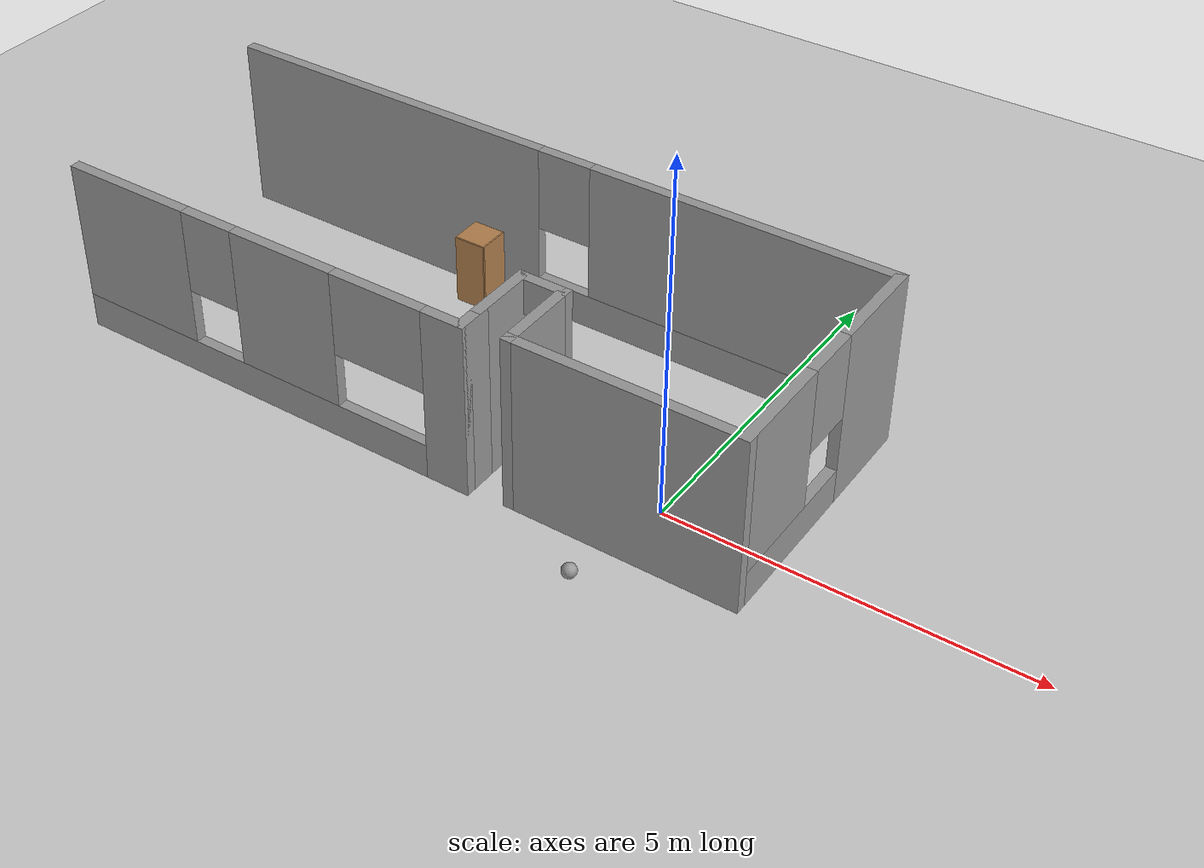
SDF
<sdf version="1.6">
 <world name="default">
  <model name="ground_plane">
   <static>1</static>
   <link name="link">
    <collision name="collision">
     <geometry><plane><normal>0 0 1</normal><size>100 100</size></plane></geometry>
     <surface><friction><ode><mu>100</mu><mu2>50</mu2></ode></friction></surface>
    </collision>
    <visual name="visual">
     <cast_shadows>0</cast_shadows>
     <geometry><plane><normal>0 0 1</normal><size>100 100</size></plane></geometry>
     <material>
      <script><uri>file://media/materials/scripts/gazebo.material</uri><name>Gazebo/Grey</name></script>
     </material>
    </visual>
   </link>
  </model>
  <model name="cabinet">
   <static>1</static>
   <link name="cabinet_bottom_plate">
    <inertial>
     <pose>0 0 -1 0 -0 0</pose>
     <inertia><ixx>2.05</ixx><ixy>0</ixy><ixz>0</ixz><iyy>2.05</iyy><iyz>0</iyz><izz>2.05</izz></inertia>
     <mass>25</mass>
    </inertial>
    <collision name="cabinet_bottom_plate_geom">
     <pose>0 0 0.01 0 -0 0</pose>
     <geometry><box><size>0.45 0.45 0.02</size></box></geometry>
    </collision>
    <visual name="cabinet_bottom_plate_geom_visual">
     <pose>0 0 0.01 0 -0 0</pose>
     <geometry><box><size>0.45 0.45 0.02</size></box></geometry>
     <material>
      <script><uri>file://media/materials/scripts/gazebo.material</uri><name>Gazebo/Wood</name></script>
     </material>
    </visual>
    <collision name="cabinet_bottom_plate_geom_cabinet_back_plate">
     <pose>0.235 0 0.51 0 -0 0</pose>
     <geometry><box><size>0.02 0.45 1.02</size></box></geometry>
    </collision>
    <visual name="cabinet_bottom_plate_geom_cabinet_back_plate_visual">
     <pose>0.235 0 0.51 0 -0 0</pose>
     <geometry><box><size>0.02 0.45 1.02</size></box></geometry>
     <material>
      <script><uri>file://media/materials/scripts/gazebo.material</uri><name>Gazebo/Wood</name></script>
     </material>
    </visual>
    <collision name="cabinet_bottom_plate_geom_cabinet_left_plate">
     <pose>0 0.235 0.51 0 -0 0</pose>
     <geometry><box><size>0.45 0.02 1.02</size></box></geometry>
    </collision>
    <visual name="cabinet_bottom_plate_geom_cabinet_left_plate_visual">
     <pose>0 0.235 0.51 0 -0 0</pose>
     <geometry><box><size>0.45 0.02 1.02</size></box></geometry>
     <material>
      <script><uri>file://media/materials/scripts/gazebo.material</uri><name>Gazebo/Wood</name></script>
     </material>
    </visual>
    <collision name="cabinet_bottom_plate_geom_cabinet_middle_plate">
     <pose>0 0 0.51 0 -0 0</pose>
     <geometry><box><size>0.45 0.45 0.02</size></box></geometry>
    </collision>
    <visual name="cabinet_bottom_plate_geom_cabinet_middle_plate_visual">
     <pose>0 0 0.51 0 -0 0</pose>
     <geometry><box><size>0.45 0.45 0.02</size></box></geometry>
     <material>
      <script><uri>file://media/materials/scripts/gazebo.material</uri><name>Gazebo/Wood</name></script>
     </material>
    </visual>
    <collision name="cabinet_bottom_plate_geom_cabinet_right_plate">
     <pose>0 -0.235 0.51 0 -0 0</pose>
     <geometry><box><size>0.45 0.02 1.02</size></box></geometry>
    </collision>
    <visual name="cabinet_bottom_plate_geom_cabinet_right_plate_visual">
     <pose>0 -0.235 0.51 0 -0 0</pose>
     <geometry><box><size>0.45 0.02 1.02</size></box></geometry>
     <material>
      <script><uri>file://media/materials/scripts/gazebo.material</uri><name>Gazebo/Wood</name></script>
     </material>
    </visual>
    <collision name="cabinet_bottom_plate_geom_cabinet_top_plate">
     <pose>0 0 1.01 0 -0 0</pose>
     <geometry><box><size>0.45 0.45 0.02</size></box></geometry>
    </collision>
    <visual name="cabinet_bottom_plate_geom_cabinet_top_plate_visual">
     <pose>0 0 1.01 0 -0 0</pose>
     <geometry><box><size>0.45 0.45 0.02</size></box></geometry>
     <material>
      <script><uri>file://media/materials/scripts/gazebo.material</uri><name>Gazebo/Wood</name></script>
     </material>
    </visual>
   </link>
   <pose>-4.44524 2.41944 0 0 -0 0</pose>
  </model>
  <model name="basicbuilding">
   <link name="Wall_17">
    <pose>0.275 1.82353 0 0 -0 0</pose>
    <visual name="Wall_17_Visual_0">
     <pose>-2.6125 0 1.25 0 -0 0</pose>
     <geometry><box><size>5.025 0.15 2.5</size></box></geometry>
     <material>
      <script><uri>file://media/materials/scripts/gazebo.material</uri><name>Gazebo/Grey</name></script>
      <ambient>1 1 1 1</ambient>
      <shader type="pixel"/>
      <diffuse>0.7 0.7 0.7 1</diffuse>
      <specular>0.01 0.01 0.01 1</specular>
      <emissive>0 0 0 1</emissive>
     </material>
     <meta><layer>0</layer></meta>
    </visual>
    <visual name="Wall_17_Visual_1">
     <pose>2.5125 0 0.25 0 -0 0</pose>
     <geometry><box><size>5.225 0.15 0.5</size></box></geometry>
     <material>
      <script><uri>file://media/materials/scripts/gazebo.material</uri><name>Gazebo/Grey</name></script>
      <ambient>1 1 1 1</ambient>
      <shader type="pixel"/>
      <diffuse>0.7 0.7 0.7 1</diffuse>
      <specular>0.01 0.01 0.01 1</specular>
      <emissive>0 0 0 1</emissive>
     </material>
     <meta><layer>0</layer></meta>
    </visual>
    <visual name="Wall_17_Visual_2">
     <pose>2.9125 0 1.5 0 -0 0</pose>
     <geometry><box><size>4.425 0.15 2</size></box></geometry>
     <material>
      <script><uri>file://media/materials/scripts/gazebo.material</uri><name>Gazebo/Grey</name></script>
      <ambient>1 1 1 1</ambient>
      <shader type="pixel"/>
      <diffuse>0.7 0.7 0.7 1</diffuse>
      <specular>0.01 0.01 0.01 1</specular>
      <emissive>0 0 0 1</emissive>
     </material>
     <meta><layer>0</layer></meta>
    </visual>
    <visual name="Wall_17_Visual_3">
     <pose>0.3 0 1.9 0 -0 0</pose>
     <geometry><box><size>0.8 0.15 1.2</size></box></geometry>
     <material>
      <script><uri>file://media/materials/scripts/gazebo.material</uri><name>Gazebo/Grey</name></script>
      <ambient>1 1 1 1</ambient>
      <shader type="pixel"/>
      <diffuse>0.7 0.7 0.7 1</diffuse>
      <specular>0.01 0.01 0.01 1</specular>
      <emissive>0 0 0 1</emissive>
     </material>
     <meta><layer>0</layer></meta>
    </visual>
    <collision name="Wall_17_Collision_0">
     <pose>-2.6125 0 1.25 0 -0 0</pose>
     <geometry><box><size>5.025 0.15 2.5</size></box></geometry>
     <surface>
      <friction>
       <ode><mu>1</mu><mu2>1</mu2><fdir1>0 0 0</fdir1><slip1>0</slip1><slip2>0</slip2></ode>
       <torsional>
        <coefficient>1</coefficient>
        <patch_radius>0</patch_radius>
        <surface_radius>0</surface_radius>
        <use_patch_radius>1</use_patch_radius>
        <ode><slip>0</slip></ode>
       </torsional>
      </friction>
      <bounce><restitution_coefficient>0</restitution_coefficient><threshold>1e+06</threshold></bounce>
      <contact>
       <collide_without_contact>0</collide_without_contact>
       <collide_without_contact_bitmask>1</collide_without_contact_bitmask>
       <collide_bitmask>1</collide_bitmask>
       <ode>
        <soft_cfm>0</soft_cfm>
        <soft_erp>0.2</soft_erp>
        <kp>1e+13</kp>
        <kd>1</kd>
        <max_vel>0.01</max_vel>
        <min_depth>0</min_depth>
       </ode>
       <bullet>
        <split_impulse>1</split_impulse>
        <split_impulse_penetration_threshold>-0.01</split_impulse_penetration_threshold>
        <soft_cfm>0</soft_cfm>
        <soft_erp>0.2</soft_erp>
        <kp>1e+13</kp>
        <kd>1</kd>
       </bullet>
      </contact>
     </surface>
    </collision>
    <collision name="Wall_17_Collision_1">
     <pose>2.5125 0 0.25 0 -0 0</pose>
     <geometry><box><size>5.225 0.15 0.5</size></box></geometry>
     <surface>
      <friction>
       <ode><mu>1</mu><mu2>1</mu2><fdir1>0 0 0</fdir1><slip1>0</slip1><slip2>0</slip2></ode>
       <torsional>
        <coefficient>1</coefficient>
        <patch_radius>0</patch_radius>
        <surface_radius>0</surface_radius>
        <use_patch_radius>1</use_patch_radius>
        <ode><slip>0</slip></ode>
       </torsional>
      </friction>
      <bounce><restitution_coefficient>0</restitution_coefficient><threshold>1e+06</threshold></bounce>
      <contact>
       <collide_without_contact>0</collide_without_contact>
       <collide_without_contact_bitmask>1</collide_without_contact_bitmask>
       <collide_bitmask>1</collide_bitmask>
       <ode>
        <soft_cfm>0</soft_cfm>
        <soft_erp>0.2</soft_erp>
        <kp>1e+13</kp>
        <kd>1</kd>
        <max_vel>0.01</max_vel>
        <min_depth>0</min_depth>
       </ode>
       <bullet>
        <split_impulse>1</split_impulse>
        <split_impulse_penetration_threshold>-0.01</split_impulse_penetration_threshold>
        <soft_cfm>0</soft_cfm>
        <soft_erp>0.2</soft_erp>
        <kp>1e+13</kp>
        <kd>1</kd>
       </bullet>
      </contact>
     </surface>
    </collision>
    <collision name="Wall_17_Collision_2">
     <pose>2.9125 0 1.5 0 -0 0</pose>
     <geometry><box><size>4.425 0.15 2</size></box></geometry>
     <surface>
      <friction>
       <ode><mu>1</mu><mu2>1</mu2><fdir1>0 0 0</fdir1><slip1>0</slip1><slip2>0</slip2></ode>
       <torsional>
        <coefficient>1</coefficient>
        <patch_radius>0</patch_radius>
        <surface_radius>0</surface_radius>
        <use_patch_radius>1</use_patch_radius>
        <ode><slip>0</slip></ode>
       </torsional>
      </friction>
      <bounce><restitution_coefficient>0</restitution_coefficient><threshold>1e+06</threshold></bounce>
      <contact>
       <collide_without_contact>0</collide_without_contact>
       <collide_without_contact_bitmask>1</collide_without_contact_bitmask>
       <collide_bitmask>1</collide_bitmask>
       <ode>
        <soft_cfm>0</soft_cfm>
        <soft_erp>0.2</soft_erp>
        <kp>1e+13</kp>
        <kd>1</kd>
        <max_vel>0.01</max_vel>
        <min_depth>0</min_depth>
       </ode>
       <bullet>
        <split_impulse>1</split_impulse>
        <split_impulse_penetration_threshold>-0.01</split_impulse_penetration_threshold>
        <soft_cfm>0</soft_cfm>
        <soft_erp>0.2</soft_erp>
        <kp>1e+13</kp>
        <kd>1</kd>
       </bullet>
      </contact>
     </surface>
    </collision>
    <collision name="Wall_17_Collision_3">
     <pose>0.3 0 1.9 0 -0 0</pose>
     <geometry><box><size>0.8 0.15 1.2</size></box></geometry>
     <surface>
      <friction>
       <ode><mu>1</mu><mu2>1</mu2><fdir1>0 0 0</fdir1><slip1>0</slip1><slip2>0</slip2></ode>
       <torsional>
        <coefficient>1</coefficient>
        <patch_radius>0</patch_radius>
        <surface_radius>0</surface_radius>
        <use_patch_radius>1</use_patch_radius>
        <ode><slip>0</slip></ode>
       </torsional>
      </friction>
      <bounce><restitution_coefficient>0</restitution_coefficient><threshold>1e+06</threshold></bounce>
      <contact>
       <collide_without_contact>0</collide_without_contact>
       <collide_without_contact_bitmask>1</collide_without_contact_bitmask>
       <collide_bitmask>1</collide_bitmask>
       <ode>
        <soft_cfm>0</soft_cfm>
        <soft_erp>0.2</soft_erp>
        <kp>1e+13</kp>
        <kd>1</kd>
        <max_vel>0.01</max_vel>
        <min_depth>0</min_depth>
       </ode>
       <bullet>
        <split_impulse>1</split_impulse>
        <split_impulse_penetration_threshold>-0.01</split_impulse_penetration_threshold>
        <soft_cfm>0</soft_cfm>
        <soft_erp>0.2</soft_erp>
        <kp>1e+13</kp>
        <kd>1</kd>
       </bullet>
      </contact>
     </surface>
    </collision>
   </link>
   <link name="Wall_18">
    <pose>5.325 0.023531 0 0 0 -1.5708</pose>
    <visual name="Wall_18_Visual_0">
     <pose>-1.1475 0 1.25 0 -0 0</pose>
     <geometry><box><size>1.455 0.15 2.5</size></box></geometry>
     <material>
      <script><uri>file://media/materials/scripts/gazebo.material</uri><name>Gazebo/Grey</name></script>
      <ambient>1 1 1 1</ambient>
      <shader type="pixel"/>
      <diffuse>0.7 0.7 0.7 1</diffuse>
      <specular>0.01 0.01 0.01 1</specular>
      <emissive>0 0 0 1</emissive>
     </material>
     <meta><layer>0</layer></meta>
    </visual>
    <visual name="Wall_18_Visual_1">
     <pose>0.7275 0 0.25 0 -0 0</pose>
     <geometry><box><size>2.295 0.15 0.5</size></box></geometry>
     <material>
      <script><uri>file://media/materials/scripts/gazebo.material</uri><name>Gazebo/Grey</name></script>
      <ambient>1 1 1 1</ambient>
      <shader type="pixel"/>
      <diffuse>0.7 0.7 0.7 1</diffuse>
      <specular>0.01 0.01 0.01 1</specular>
      <emissive>0 0 0 1</emissive>
     </material>
     <meta><layer>0</layer></meta>
    </visual>
    <visual name="Wall_18_Visual_2">
     <pose>1.1275 0 1.5 0 -0 0</pose>
     <geometry><box><size>1.495 0.15 2</size></box></geometry>
     <material>
      <script><uri>file://media/materials/scripts/gazebo.material</uri><name>Gazebo/Grey</name></script>
      <ambient>1 1 1 1</ambient>
      <shader type="pixel"/>
      <diffuse>0.7 0.7 0.7 1</diffuse>
      <specular>0.01 0.01 0.01 1</specular>
      <emissive>0 0 0 1</emissive>
     </material>
     <meta><layer>0</layer></meta>
    </visual>
    <visual name="Wall_18_Visual_3">
     <pose>-0.02 0 1.9 0 -0 0</pose>
     <geometry><box><size>0.8 0.15 1.2</size></box></geometry>
     <material>
      <script><uri>file://media/materials/scripts/gazebo.material</uri><name>Gazebo/Grey</name></script>
      <ambient>1 1 1 1</ambient>
      <shader type="pixel"/>
      <diffuse>0.7 0.7 0.7 1</diffuse>
      <specular>0.01 0.01 0.01 1</specular>
      <emissive>0 0 0 1</emissive>
     </material>
     <meta><layer>0</layer></meta>
    </visual>
    <collision name="Wall_18_Collision_0">
     <pose>-1.1475 0 1.25 0 -0 0</pose>
     <geometry><box><size>1.455 0.15 2.5</size></box></geometry>
     <surface>
      <friction>
       <ode><mu>1</mu><mu2>1</mu2><fdir1>0 0 0</fdir1><slip1>0</slip1><slip2>0</slip2></ode>
       <torsional>
        <coefficient>1</coefficient>
        <patch_radius>0</patch_radius>
        <surface_radius>0</surface_radius>
        <use_patch_radius>1</use_patch_radius>
        <ode><slip>0</slip></ode>
       </torsional>
      </friction>
      <bounce><restitution_coefficient>0</restitution_coefficient><threshold>1e+06</threshold></bounce>
      <contact>
       <collide_without_contact>0</collide_without_contact>
       <collide_without_contact_bitmask>1</collide_without_contact_bitmask>
       <collide_bitmask>1</collide_bitmask>
       <ode>
        <soft_cfm>0</soft_cfm>
        <soft_erp>0.2</soft_erp>
        <kp>1e+13</kp>
        <kd>1</kd>
        <max_vel>0.01</max_vel>
        <min_depth>0</min_depth>
       </ode>
       <bullet>
        <split_impulse>1</split_impulse>
        <split_impulse_penetration_threshold>-0.01</split_impulse_penetration_threshold>
        <soft_cfm>0</soft_cfm>
        <soft_erp>0.2</soft_erp>
        <kp>1e+13</kp>
        <kd>1</kd>
       </bullet>
      </contact>
     </surface>
    </collision>
    <collision name="Wall_18_Collision_1">
     <pose>0.7275 0 0.25 0 -0 0</pose>
     <geometry><box><size>2.295 0.15 0.5</size></box></geometry>
     <surface>
      <friction>
       <ode><mu>1</mu><mu2>1</mu2><fdir1>0 0 0</fdir1><slip1>0</slip1><slip2>0</slip2></ode>
       <torsional>
        <coefficient>1</coefficient>
        <patch_radius>0</patch_radius>
        <surface_radius>0</surface_radius>
        <use_patch_radius>1</use_patch_radius>
        <ode><slip>0</slip></ode>
       </torsional>
      </friction>
      <bounce><restitution_coefficient>0</restitution_coefficient><threshold>1e+06</threshold></bounce>
      <contact>
       <collide_without_contact>0</collide_without_contact>
       <collide_without_contact_bitmask>1</collide_without_contact_bitmask>
       <collide_bitmask>1</collide_bitmask>
       <ode>
        <soft_cfm>0</soft_cfm>
        <soft_erp>0.2</soft_erp>
        <kp>1e+13</kp>
        <kd>1</kd>
        <max_vel>0.01</max_vel>
        <min_depth>0</min_depth>
       </ode>
       <bullet>
        <split_impulse>1</split_impulse>
        <split_impulse_penetration_threshold>-0.01</split_impulse_penetration_threshold>
        <soft_cfm>0</soft_cfm>
        <soft_erp>0.2</soft_erp>
        <kp>1e+13</kp>
        <kd>1</kd>
       </bullet>
      </contact>
     </surface>
    </collision>
    <collision name="Wall_18_Collision_2">
     <pose>1.1275 0 1.5 0 -0 0</pose>
     <geometry><box><size>1.495 0.15 2</size></box></geometry>
     <surface>
      <friction>
       <ode><mu>1</mu><mu2>1</mu2><fdir1>0 0 0</fdir1><slip1>0</slip1><slip2>0</slip2></ode>
       <torsional>
        <coefficient>1</coefficient>
        <patch_radius>0</patch_radius>
        <surface_radius>0</surface_radius>
        <use_patch_radius>1</use_patch_radius>
        <ode><slip>0</slip></ode>
       </torsional>
      </friction>
      <bounce><restitution_coefficient>0</restitution_coefficient><threshold>1e+06</threshold></bounce>
      <contact>
       <collide_without_contact>0</collide_without_contact>
       <collide_without_contact_bitmask>1</collide_without_contact_bitmask>
       <collide_bitmask>1</collide_bitmask>
       <ode>
        <soft_cfm>0</soft_cfm>
        <soft_erp>0.2</soft_erp>
        <kp>1e+13</kp>
        <kd>1</kd>
        <max_vel>0.01</max_vel>
        <min_depth>0</min_depth>
       </ode>
       <bullet>
        <split_impulse>1</split_impulse>
        <split_impulse_penetration_threshold>-0.01</split_impulse_penetration_threshold>
        <soft_cfm>0</soft_cfm>
        <soft_erp>0.2</soft_erp>
        <kp>1e+13</kp>
        <kd>1</kd>
       </bullet>
      </contact>
     </surface>
    </collision>
    <collision name="Wall_18_Collision_3">
     <pose>-0.02 0 1.9 0 -0 0</pose>
     <geometry><box><size>0.8 0.15 1.2</size></box></geometry>
     <surface>
      <friction>
       <ode><mu>1</mu><mu2>1</mu2><fdir1>0 0 0</fdir1><slip1>0</slip1><slip2>0</slip2></ode>
       <torsional>
        <coefficient>1</coefficient>
        <patch_radius>0</patch_radius>
        <surface_radius>0</surface_radius>
        <use_patch_radius>1</use_patch_radius>
        <ode><slip>0</slip></ode>
       </torsional>
      </friction>
      <bounce><restitution_coefficient>0</restitution_coefficient><threshold>1e+06</threshold></bounce>
      <contact>
       <collide_without_contact>0</collide_without_contact>
       <collide_without_contact_bitmask>1</collide_without_contact_bitmask>
       <collide_bitmask>1</collide_bitmask>
       <ode>
        <soft_cfm>0</soft_cfm>
        <soft_erp>0.2</soft_erp>
        <kp>1e+13</kp>
        <kd>1</kd>
        <max_vel>0.01</max_vel>
        <min_depth>0</min_depth>
       </ode>
       <bullet>
        <split_impulse>1</split_impulse>
        <split_impulse_penetration_threshold>-0.01</split_impulse_penetration_threshold>
        <soft_cfm>0</soft_cfm>
        <soft_erp>0.2</soft_erp>
        <kp>1e+13</kp>
        <kd>1</kd>
       </bullet>
      </contact>
     </surface>
    </collision>
   </link>
   <link name="Wall_19">
    <pose>3.775 -1.77647 0 0 -0 3.14159</pose>
    <visual name="Wall_19_Visual">
     <pose>0 0 1.25 0 -0 0</pose>
     <geometry><box><size>3.25 0.15 2.5</size></box></geometry>
     <material>
      <script><uri>file://media/materials/scripts/gazebo.material</uri><name>Gazebo/Grey</name></script>
      <ambient>1 1 1 1</ambient>
      <shader type="pixel"/>
      <diffuse>0.7 0.7 0.7 1</diffuse>
      <specular>0.01 0.01 0.01 1</specular>
      <emissive>0 0 0 1</emissive>
     </material>
     <meta><layer>0</layer></meta>
    </visual>
    <collision name="Wall_19_Collision">
     <pose>0 0 1.25 0 -0 0</pose>
     <geometry><box><size>3.25 0.15 2.5</size></box></geometry>
     <surface>
      <friction>
       <ode><mu>1</mu><mu2>1</mu2><fdir1>0 0 0</fdir1><slip1>0</slip1><slip2>0</slip2></ode>
       <torsional>
        <coefficient>1</coefficient>
        <patch_radius>0</patch_radius>
        <surface_radius>0</surface_radius>
        <use_patch_radius>1</use_patch_radius>
        <ode><slip>0</slip></ode>
       </torsional>
      </friction>
      <bounce><restitution_coefficient>0</restitution_coefficient><threshold>1e+06</threshold></bounce>
      <contact>
       <collide_without_contact>0</collide_without_contact>
       <collide_without_contact_bitmask>1</collide_without_contact_bitmask>
       <collide_bitmask>1</collide_bitmask>
       <ode>
        <soft_cfm>0</soft_cfm>
        <soft_erp>0.2</soft_erp>
        <kp>1e+13</kp>
        <kd>1</kd>
        <max_vel>0.01</max_vel>
        <min_depth>0</min_depth>
       </ode>
       <bullet>
        <split_impulse>1</split_impulse>
        <split_impulse_penetration_threshold>-0.01</split_impulse_penetration_threshold>
        <soft_cfm>0</soft_cfm>
        <soft_erp>0.2</soft_erp>
        <kp>1e+13</kp>
        <kd>1</kd>
       </bullet>
      </contact>
     </surface>
    </collision>
   </link>
   <link name="Wall_20">
    <pose>2.225 -1.22647 0 0 -0 1.5708</pose>
    <visual name="Wall_20_Visual">
     <pose>0 0 1.25 0 -0 0</pose>
     <geometry><box><size>1.25 0.15 2.5</size></box></geometry>
     <material>
      <script><uri>file://media/materials/scripts/gazebo.material</uri><name>Gazebo/Grey</name></script>
      <ambient>1 1 1 1</ambient>
      <shader type="pixel"/>
      <diffuse>0.7 0.7 0.7 1</diffuse>
      <specular>0.01 0.01 0.01 1</specular>
      <emissive>0 0 0 1</emissive>
     </material>
     <meta><layer>0</layer></meta>
    </visual>
    <collision name="Wall_20_Collision">
     <pose>0 0 1.25 0 -0 0</pose>
     <geometry><box><size>1.25 0.15 2.5</size></box></geometry>
     <surface>
      <friction>
       <ode><mu>1</mu><mu2>1</mu2><fdir1>0 0 0</fdir1><slip1>0</slip1><slip2>0</slip2></ode>
       <torsional>
        <coefficient>1</coefficient>
        <patch_radius>0</patch_radius>
        <surface_radius>0</surface_radius>
        <use_patch_radius>1</use_patch_radius>
        <ode><slip>0</slip></ode>
       </torsional>
      </friction>
      <bounce><restitution_coefficient>0</restitution_coefficient><threshold>1e+06</threshold></bounce>
      <contact>
       <collide_without_contact>0</collide_without_contact>
       <collide_without_contact_bitmask>1</collide_without_contact_bitmask>
       <collide_bitmask>1</collide_bitmask>
       <ode>
        <soft_cfm>0</soft_cfm>
        <soft_erp>0.2</soft_erp>
        <kp>1e+13</kp>
        <kd>1</kd>
        <max_vel>0.01</max_vel>
        <min_depth>0</min_depth>
       </ode>
       <bullet>
        <split_impulse>1</split_impulse>
        <split_impulse_penetration_threshold>-0.01</split_impulse_penetration_threshold>
        <soft_cfm>0</soft_cfm>
        <soft_erp>0.2</soft_erp>
        <kp>1e+13</kp>
        <kd>1</kd>
       </bullet>
      </contact>
     </surface>
    </collision>
   </link>
   <link name="Wall_21">
    <pose>1.925 -0.676469 0 0 -0 3.14159</pose>
    <visual name="Wall_21_Visual_0">
     <pose>-0.33 0 1.25 0 -0 0</pose>
     <geometry><box><size>0.09 0.15 2.5</size></box></geometry>
     <material>
      <script><uri>file://media/materials/scripts/gazebo.material</uri><name>Gazebo/Grey</name></script>
      <ambient>1 1 1 1</ambient>
      <shader type="pixel"/>
      <diffuse>0.7 0.7 0.7 1</diffuse>
      <specular>0.01 0.01 0.01 1</specular>
      <emissive>0 0 0 1</emissive>
     </material>
     <meta><layer>0</layer></meta>
    </visual>
    <visual name="Wall_21_Visual_1">
     <pose>0.345 0 1.25 0 -0 0</pose>
     <geometry><box><size>0.06 0.15 2.5</size></box></geometry>
     <material>
      <script><uri>file://media/materials/scripts/gazebo.material</uri><name>Gazebo/Grey</name></script>
      <ambient>1 1 1 1</ambient>
      <shader type="pixel"/>
      <diffuse>0.7 0.7 0.7 1</diffuse>
      <specular>0.01 0.01 0.01 1</specular>
      <emissive>0 0 0 1</emissive>
     </material>
     <meta><layer>0</layer></meta>
    </visual>
    <visual name="Wall_21_Visual_2">
     <pose>0.015 0 2.25 0 -0 0</pose>
     <geometry><box><size>0.6 0.15 0.5</size></box></geometry>
     <material>
      <script><uri>file://media/materials/scripts/gazebo.material</uri><name>Gazebo/Grey</name></script>
      <ambient>1 1 1 1</ambient>
      <shader type="pixel"/>
      <diffuse>0.7 0.7 0.7 1</diffuse>
      <specular>0.01 0.01 0.01 1</specular>
      <emissive>0 0 0 1</emissive>
     </material>
     <meta><layer>0</layer></meta>
    </visual>
    <collision name="Wall_21_Collision_0">
     <pose>-0.33 0 1.25 0 -0 0</pose>
     <geometry><box><size>0.09 0.15 2.5</size></box></geometry>
     <surface>
      <friction>
       <ode><mu>1</mu><mu2>1</mu2><fdir1>0 0 0</fdir1><slip1>0</slip1><slip2>0</slip2></ode>
       <torsional>
        <coefficient>1</coefficient>
        <patch_radius>0</patch_radius>
        <surface_radius>0</surface_radius>
        <use_patch_radius>1</use_patch_radius>
        <ode><slip>0</slip></ode>
       </torsional>
      </friction>
      <bounce><restitution_coefficient>0</restitution_coefficient><threshold>1e+06</threshold></bounce>
      <contact>
       <collide_without_contact>0</collide_without_contact>
       <collide_without_contact_bitmask>1</collide_without_contact_bitmask>
       <collide_bitmask>1</collide_bitmask>
       <ode>
        <soft_cfm>0</soft_cfm>
        <soft_erp>0.2</soft_erp>
        <kp>1e+13</kp>
        <kd>1</kd>
        <max_vel>0.01</max_vel>
        <min_depth>0</min_depth>
       </ode>
       <bullet>
        <split_impulse>1</split_impulse>
        <split_impulse_penetration_threshold>-0.01</split_impulse_penetration_threshold>
        <soft_cfm>0</soft_cfm>
        <soft_erp>0.2</soft_erp>
        <kp>1e+13</kp>
        <kd>1</kd>
       </bullet>
      </contact>
     </surface>
    </collision>
    <collision name="Wall_21_Collision_1">
     <pose>0.345 0 1.25 0 -0 0</pose>
     <geometry><box><size>0.06 0.15 2.5</size></box></geometry>
     <surface>
      <friction>
       <ode><mu>1</mu><mu2>1</mu2><fdir1>0 0 0</fdir1><slip1>0</slip1><slip2>0</slip2></ode>
       <torsional>
        <coefficient>1</coefficient>
        <patch_radius>0</patch_radius>
        <surface_radius>0</surface_radius>
        <use_patch_radius>1</use_patch_radius>
        <ode><slip>0</slip></ode>
       </torsional>
      </friction>
      <bounce><restitution_coefficient>0</restitution_coefficient><threshold>1e+06</threshold></bounce>
      <contact>
       <collide_without_contact>0</collide_without_contact>
       <collide_without_contact_bitmask>1</collide_without_contact_bitmask>
       <collide_bitmask>1</collide_bitmask>
       <ode>
        <soft_cfm>0</soft_cfm>
        <soft_erp>0.2</soft_erp>
        <kp>1e+13</kp>
        <kd>1</kd>
        <max_vel>0.01</max_vel>
        <min_depth>0</min_depth>
       </ode>
       <bullet>
        <split_impulse>1</split_impulse>
        <split_impulse_penetration_threshold>-0.01</split_impulse_penetration_threshold>
        <soft_cfm>0</soft_cfm>
        <soft_erp>0.2</soft_erp>
        <kp>1e+13</kp>
        <kd>1</kd>
       </bullet>
      </contact>
     </surface>
    </collision>
    <collision name="Wall_21_Collision_2">
     <pose>0.015 0 2.25 0 -0 0</pose>
     <geometry><box><size>0.6 0.15 0.5</size></box></geometry>
     <surface>
      <friction>
       <ode><mu>1</mu><mu2>1</mu2><fdir1>0 0 0</fdir1><slip1>0</slip1><slip2>0</slip2></ode>
       <torsional>
        <coefficient>1</coefficient>
        <patch_radius>0</patch_radius>
        <surface_radius>0</surface_radius>
        <use_patch_radius>1</use_patch_radius>
        <ode><slip>0</slip></ode>
       </torsional>
      </friction>
      <bounce><restitution_coefficient>0</restitution_coefficient><threshold>1e+06</threshold></bounce>
      <contact>
       <collide_without_contact>0</collide_without_contact>
       <collide_without_contact_bitmask>1</collide_without_contact_bitmask>
       <collide_bitmask>1</collide_bitmask>
       <ode>
        <soft_cfm>0</soft_cfm>
        <soft_erp>0.2</soft_erp>
        <kp>1e+13</kp>
        <kd>1</kd>
        <max_vel>0.01</max_vel>
        <min_depth>0</min_depth>
       </ode>
       <bullet>
        <split_impulse>1</split_impulse>
        <split_impulse_penetration_threshold>-0.01</split_impulse_penetration_threshold>
        <soft_cfm>0</soft_cfm>
        <soft_erp>0.2</soft_erp>
        <kp>1e+13</kp>
        <kd>1</kd>
       </bullet>
      </contact>
     </surface>
    </collision>
   </link>
   <link name="Wall_22">
    <pose>1.625 -1.10147 0 0 0 -1.5708</pose>
    <visual name="Wall_22_Visual">
     <pose>0 0 1.25 0 -0 0</pose>
     <geometry><box><size>1 0.15 2.5</size></box></geometry>
     <material>
      <script><uri>file://media/materials/scripts/gazebo.material</uri><name>Gazebo/Grey</name></script>
      <ambient>1 1 1 1</ambient>
      <shader type="pixel"/>
      <diffuse>0.7 0.7 0.7 1</diffuse>
      <specular>0.01 0.01 0.01 1</specular>
      <emissive>0 0 0 1</emissive>
     </material>
     <meta><layer>0</layer></meta>
    </visual>
    <collision name="Wall_22_Collision">
     <pose>0 0 1.25 0 -0 0</pose>
     <geometry><box><size>1 0.15 2.5</size></box></geometry>
     <surface>
      <friction>
       <ode><mu>1</mu><mu2>1</mu2><fdir1>0 0 0</fdir1><slip1>0</slip1><slip2>0</slip2></ode>
       <torsional>
        <coefficient>1</coefficient>
        <patch_radius>0</patch_radius>
        <surface_radius>0</surface_radius>
        <use_patch_radius>1</use_patch_radius>
        <ode><slip>0</slip></ode>
       </torsional>
      </friction>
      <bounce><restitution_coefficient>0</restitution_coefficient><threshold>1e+06</threshold></bounce>
      <contact>
       <collide_without_contact>0</collide_without_contact>
       <collide_without_contact_bitmask>1</collide_without_contact_bitmask>
       <collide_bitmask>1</collide_bitmask>
       <ode>
        <soft_cfm>0</soft_cfm>
        <soft_erp>0.2</soft_erp>
        <kp>1e+13</kp>
        <kd>1</kd>
        <max_vel>0.01</max_vel>
        <min_depth>0</min_depth>
       </ode>
       <bullet>
        <split_impulse>1</split_impulse>
        <split_impulse_penetration_threshold>-0.01</split_impulse_penetration_threshold>
        <soft_cfm>0</soft_cfm>
        <soft_erp>0.2</soft_erp>
        <kp>1e+13</kp>
        <kd>1</kd>
       </bullet>
      </contact>
     </surface>
    </collision>
   </link>
   <link name="Wall_23">
    <pose>1.625 -1.70147 0 0 0 -1.5708</pose>
    <visual name="Wall_23_Visual">
     <pose>0 0 1.25 0 -0 0</pose>
     <geometry><box><size>0.5 0.15 2.5</size></box></geometry>
     <material>
      <script><uri>file://media/materials/scripts/gazebo.material</uri><name>Gazebo/Grey</name></script>
      <ambient>1 1 1 1</ambient>
      <shader type="pixel"/>
      <diffuse>0.7 0.7 0.7 1</diffuse>
      <specular>0.01 0.01 0.01 1</specular>
      <emissive>0 0 0 1</emissive>
     </material>
     <meta><layer>0</layer></meta>
    </visual>
    <collision name="Wall_23_Collision">
     <pose>0 0 1.25 0 -0 0</pose>
     <geometry><box><size>0.5 0.15 2.5</size></box></geometry>
     <surface>
      <friction>
       <ode><mu>1</mu><mu2>1</mu2><fdir1>0 0 0</fdir1><slip1>0</slip1><slip2>0</slip2></ode>
       <torsional>
        <coefficient>1</coefficient>
        <patch_radius>0</patch_radius>
        <surface_radius>0</surface_radius>
        <use_patch_radius>1</use_patch_radius>
        <ode><slip>0</slip></ode>
       </torsional>
      </friction>
      <bounce><restitution_coefficient>0</restitution_coefficient><threshold>1e+06</threshold></bounce>
      <contact>
       <collide_without_contact>0</collide_without_contact>
       <collide_without_contact_bitmask>1</collide_without_contact_bitmask>
       <collide_bitmask>1</collide_bitmask>
       <ode>
        <soft_cfm>0</soft_cfm>
        <soft_erp>0.2</soft_erp>
        <kp>1e+13</kp>
        <kd>1</kd>
        <max_vel>0.01</max_vel>
        <min_depth>0</min_depth>
       </ode>
       <bullet>
        <split_impulse>1</split_impulse>
        <split_impulse_penetration_threshold>-0.01</split_impulse_penetration_threshold>
        <soft_cfm>0</soft_cfm>
        <soft_erp>0.2</soft_erp>
        <kp>1e+13</kp>
        <kd>1</kd>
       </bullet>
      </contact>
     </surface>
    </collision>
   </link>
   <link name="Wall_24">
    <pose>-1.425 -1.87647 0 0 -0 3.14159</pose>
    <visual name="Wall_24_Visual_0">
     <pose>-2.8175 0 1.25 0 -0 0</pose>
     <geometry><box><size>0.615 0.15 2.5</size></box></geometry>
     <material>
      <script><uri>file://media/materials/scripts/gazebo.material</uri><name>Gazebo/Grey</name></script>
      <ambient>1 1 1 1</ambient>
      <shader type="pixel"/>
      <diffuse>0.7 0.7 0.7 1</diffuse>
      <specular>0.01 0.01 0.01 1</specular>
      <emissive>0 0 0 1</emissive>
     </material>
     <meta><layer>0</layer></meta>
    </visual>
    <visual name="Wall_24_Visual_1">
     <pose>0.3075 0 0.25 0 -0 0</pose>
     <geometry><box><size>5.635 0.15 0.5</size></box></geometry>
     <material>
      <script><uri>file://media/materials/scripts/gazebo.material</uri><name>Gazebo/Grey</name></script>
      <ambient>1 1 1 1</ambient>
      <shader type="pixel"/>
      <diffuse>0.7 0.7 0.7 1</diffuse>
      <specular>0.01 0.01 0.01 1</specular>
      <emissive>0 0 0 1</emissive>
     </material>
     <meta><layer>0</layer></meta>
    </visual>
    <visual name="Wall_24_Visual_2">
     <pose>-0.365 0 1.5 0 -0 0</pose>
     <geometry><box><size>1.57 0.15 2</size></box></geometry>
     <material>
      <script><uri>file://media/materials/scripts/gazebo.material</uri><name>Gazebo/Grey</name></script>
      <ambient>1 1 1 1</ambient>
      <shader type="pixel"/>
      <diffuse>0.7 0.7 0.7 1</diffuse>
      <specular>0.01 0.01 0.01 1</specular>
      <emissive>0 0 0 1</emissive>
     </material>
     <meta><layer>0</layer></meta>
    </visual>
    <visual name="Wall_24_Visual_3">
     <pose>2.1725 0 1.5 0 -0 0</pose>
     <geometry><box><size>1.905 0.15 2</size></box></geometry>
     <material>
      <script><uri>file://media/materials/scripts/gazebo.material</uri><name>Gazebo/Grey</name></script>
      <ambient>1 1 1 1</ambient>
      <shader type="pixel"/>
      <diffuse>0.7 0.7 0.7 1</diffuse>
      <specular>0.01 0.01 0.01 1</specular>
      <emissive>0 0 0 1</emissive>
     </material>
     <meta><layer>0</layer></meta>
    </visual>
    <visual name="Wall_24_Visual_4">
     <pose>-1.83 0 1.9 0 -0 0</pose>
     <geometry><box><size>1.36 0.15 1.2</size></box></geometry>
     <material>
      <script><uri>file://media/materials/scripts/gazebo.material</uri><name>Gazebo/Grey</name></script>
      <ambient>1 1 1 1</ambient>
      <shader type="pixel"/>
      <diffuse>0.7 0.7 0.7 1</diffuse>
      <specular>0.01 0.01 0.01 1</specular>
      <emissive>0 0 0 1</emissive>
     </material>
     <meta><layer>0</layer></meta>
    </visual>
    <visual name="Wall_24_Visual_5">
     <pose>0.82 0 1.9 0 -0 0</pose>
     <geometry><box><size>0.8 0.15 1.2</size></box></geometry>
     <material>
      <script><uri>file://media/materials/scripts/gazebo.material</uri><name>Gazebo/Grey</name></script>
      <ambient>1 1 1 1</ambient>
      <shader type="pixel"/>
      <diffuse>0.7 0.7 0.7 1</diffuse>
      <specular>0.01 0.01 0.01 1</specular>
      <emissive>0 0 0 1</emissive>
     </material>
     <meta><layer>0</layer></meta>
    </visual>
    <collision name="Wall_24_Collision_0">
     <pose>-2.8175 0 1.25 0 -0 0</pose>
     <geometry><box><size>0.615 0.15 2.5</size></box></geometry>
     <surface>
      <friction>
       <ode><mu>1</mu><mu2>1</mu2><fdir1>0 0 0</fdir1><slip1>0</slip1><slip2>0</slip2></ode>
       <torsional>
        <coefficient>1</coefficient>
        <patch_radius>0</patch_radius>
        <surface_radius>0</surface_radius>
        <use_patch_radius>1</use_patch_radius>
        <ode><slip>0</slip></ode>
       </torsional>
      </friction>
      <bounce><restitution_coefficient>0</restitution_coefficient><threshold>1e+06</threshold></bounce>
      <contact>
       <collide_without_contact>0</collide_without_contact>
       <collide_without_contact_bitmask>1</collide_without_contact_bitmask>
       <collide_bitmask>1</collide_bitmask>
       <ode>
        <soft_cfm>0</soft_cfm>
        <soft_erp>0.2</soft_erp>
        <kp>1e+13</kp>
        <kd>1</kd>
        <max_vel>0.01</max_vel>
        <min_depth>0</min_depth>
       </ode>
       <bullet>
        <split_impulse>1</split_impulse>
        <split_impulse_penetration_threshold>-0.01</split_impulse_penetration_threshold>
        <soft_cfm>0</soft_cfm>
        <soft_erp>0.2</soft_erp>
        <kp>1e+13</kp>
        <kd>1</kd>
       </bullet>
      </contact>
     </surface>
    </collision>
    <collision name="Wall_24_Collision_1">
     <pose>0.3075 0 0.25 0 -0 0</pose>
     <geometry><box><size>5.635 0.15 0.5</size></box></geometry>
     <surface>
      <friction>
       <ode><mu>1</mu><mu2>1</mu2><fdir1>0 0 0</fdir1><slip1>0</slip1><slip2>0</slip2></ode>
       <torsional>
        <coefficient>1</coefficient>
        <patch_radius>0</patch_radius>
        <surface_radius>0</surface_radius>
        <use_patch_radius>1</use_patch_radius>
        <ode><slip>0</slip></ode>
       </torsional>
      </friction>
      <bounce><restitution_coefficient>0</restitution_coefficient><threshold>1e+06</threshold></bounce>
      <contact>
       <collide_without_contact>0</collide_without_contact>
       <collide_without_contact_bitmask>1</collide_without_contact_bitmask>
       <collide_bitmask>1</collide_bitmask>
       <ode>
        <soft_cfm>0</soft_cfm>
        <soft_erp>0.2</soft_erp>
        <kp>1e+13</kp>
        <kd>1</kd>
        <max_vel>0.01</max_vel>
        <min_depth>0</min_depth>
       </ode>
       <bullet>
        <split_impulse>1</split_impulse>
        <split_impulse_penetration_threshold>-0.01</split_impulse_penetration_threshold>
        <soft_cfm>0</soft_cfm>
        <soft_erp>0.2</soft_erp>
        <kp>1e+13</kp>
        <kd>1</kd>
       </bullet>
      </contact>
     </surface>
    </collision>
    <collision name="Wall_24_Collision_2">
     <pose>-0.365 0 1.5 0 -0 0</pose>
     <geometry><box><size>1.57 0.15 2</size></box></geometry>
     <surface>
      <friction>
       <ode><mu>1</mu><mu2>1</mu2><fdir1>0 0 0</fdir1><slip1>0</slip1><slip2>0</slip2></ode>
       <torsional>
        <coefficient>1</coefficient>
        <patch_radius>0</patch_radius>
        <surface_radius>0</surface_radius>
        <use_patch_radius>1</use_patch_radius>
        <ode><slip>0</slip></ode>
       </torsional>
      </friction>
      <bounce><restitution_coefficient>0</restitution_coefficient><threshold>1e+06</threshold></bounce>
      <contact>
       <collide_without_contact>0</collide_without_contact>
       <collide_without_contact_bitmask>1</collide_without_contact_bitmask>
       <collide_bitmask>1</collide_bitmask>
       <ode>
        <soft_cfm>0</soft_cfm>
        <soft_erp>0.2</soft_erp>
        <kp>1e+13</kp>
        <kd>1</kd>
        <max_vel>0.01</max_vel>
        <min_depth>0</min_depth>
       </ode>
       <bullet>
        <split_impulse>1</split_impulse>
        <split_impulse_penetration_threshold>-0.01</split_impulse_penetration_threshold>
        <soft_cfm>0</soft_cfm>
        <soft_erp>0.2</soft_erp>
        <kp>1e+13</kp>
        <kd>1</kd>
       </bullet>
      </contact>
     </surface>
    </collision>
    <collision name="Wall_24_Collision_3">
     <pose>2.1725 0 1.5 0 -0 0</pose>
     <geometry><box><size>1.905 0.15 2</size></box></geometry>
     <surface>
      <friction>
       <ode><mu>1</mu><mu2>1</mu2><fdir1>0 0 0</fdir1><slip1>0</slip1><slip2>0</slip2></ode>
       <torsional>
        <coefficient>1</coefficient>
        <patch_radius>0</patch_radius>
        <surface_radius>0</surface_radius>
        <use_patch_radius>1</use_patch_radius>
        <ode><slip>0</slip></ode>
       </torsional>
      </friction>
      <bounce><restitution_coefficient>0</restitution_coefficient><threshold>1e+06</threshold></bounce>
      <contact>
       <collide_without_contact>0</collide_without_contact>
       <collide_without_contact_bitmask>1</collide_without_contact_bitmask>
       <collide_bitmask>1</collide_bitmask>
       <ode>
        <soft_cfm>0</soft_cfm>
        <soft_erp>0.2</soft_erp>
        <kp>1e+13</kp>
        <kd>1</kd>
        <max_vel>0.01</max_vel>
        <min_depth>0</min_depth>
       </ode>
       <bullet>
        <split_impulse>1</split_impulse>
        <split_impulse_penetration_threshold>-0.01</split_impulse_penetration_threshold>
        <soft_cfm>0</soft_cfm>
        <soft_erp>0.2</soft_erp>
        <kp>1e+13</kp>
        <kd>1</kd>
       </bullet>
      </contact>
     </surface>
    </collision>
    <collision name="Wall_24_Collision_5">
     <pose>0.82 0 1.9 0 -0 0</pose>
     <geometry><box><size>0.8 0.15 1.2</size></box></geometry>
     <surface>
      <friction>
       <ode><mu>1</mu><mu2>1</mu2><fdir1>0 0 0</fdir1><slip1>0</slip1><slip2>0</slip2></ode>
       <torsional>
        <coefficient>1</coefficient>
        <patch_radius>0</patch_radius>
        <surface_radius>0</surface_radius>
        <use_patch_radius>1</use_patch_radius>
        <ode><slip>0</slip></ode>
       </torsional>
      </friction>
      <bounce><restitution_coefficient>0</restitution_coefficient><threshold>1e+06</threshold></bounce>
      <contact>
       <collide_without_contact>0</collide_without_contact>
       <collide_without_contact_bitmask>1</collide_without_contact_bitmask>
       <collide_bitmask>1</collide_bitmask>
       <ode>
        <soft_cfm>0</soft_cfm>
        <soft_erp>0.2</soft_erp>
        <kp>1e+13</kp>
        <kd>1</kd>
        <max_vel>0.01</max_vel>
        <min_depth>0</min_depth>
       </ode>
       <bullet>
        <split_impulse>1</split_impulse>
        <split_impulse_penetration_threshold>-0.01</split_impulse_penetration_threshold>
        <soft_cfm>0</soft_cfm>
        <soft_erp>0.2</soft_erp>
        <kp>1e+13</kp>
        <kd>1</kd>
       </bullet>
      </contact>
     </surface>
    </collision>
    <collision name="Wall_24_Collision_4">
     <pose>-1.83 0 1.9 0 -0 0</pose>
     <geometry><box><size>1.36 0.15 1.2</size></box></geometry>
     <surface>
      <friction>
       <ode><mu>1</mu><mu2>1</mu2><fdir1>0 0 0</fdir1><slip1>0</slip1><slip2>0</slip2></ode>
       <torsional>
        <coefficient>1</coefficient>
        <patch_radius>0</patch_radius>
        <surface_radius>0</surface_radius>
        <use_patch_radius>1</use_patch_radius>
        <ode><slip>0</slip></ode>
       </torsional>
      </friction>
      <bounce><restitution_coefficient>0</restitution_coefficient><threshold>1e+06</threshold></bounce>
      <contact>
       <collide_without_contact>0</collide_without_contact>
       <collide_without_contact_bitmask>1</collide_without_contact_bitmask>
       <collide_bitmask>1</collide_bitmask>
       <ode>
        <soft_cfm>0</soft_cfm>
        <soft_erp>0.2</soft_erp>
        <kp>1e+13</kp>
        <kd>1</kd>
        <max_vel>0.01</max_vel>
        <min_depth>0</min_depth>
       </ode>
       <bullet>
        <split_impulse>1</split_impulse>
        <split_impulse_penetration_threshold>-0.01</split_impulse_penetration_threshold>
        <soft_cfm>0</soft_cfm>
        <soft_erp>0.2</soft_erp>
        <kp>1e+13</kp>
        <kd>1</kd>
       </bullet>
      </contact>
     </surface>
    </collision>
   </link>
   <static>1</static>
   <pose>-3.79806 0.89575 0 0 -0 0</pose>
  </model>
  <model name="my_ball">
   <link name="link_0">
    <inertial>
     <mass>1</mass>
     <inertia><ixx>0.1</ixx><ixy>0</ixy><ixz>0</ixz><iyy>0.1</iyy><iyz>0</iyz><izz>0.1</izz></inertia>
    </inertial>
    <visual name="visual">
     <geometry><sphere><radius>0.1</radius></sphere></geometry>
     <material>
      <lighting>1</lighting>
      <script><uri>file://media/materials/scripts/gazebo.material</uri><name>Gazebo/Grey</name></script>
      <shader type="pixel"><normal_map>__default__</normal_map></shader>
      <ambient>1 1 1 1</ambient>
      <diffuse>1 1 1 1</diffuse>
      <specular>1 1 1 1</specular>
      <emissive>1 1 1 1</emissive>
     </material>
    </visual>
    <collision name="collision">
     <geometry><sphere><radius>0.1</radius></sphere></geometry>
     <surface>
      <friction>
       <ode><mu>1</mu><mu2>1</mu2><fdir1>0 0 0</fdir1><slip1>0</slip1><slip2>0</slip2></ode>
       <torsional>
        <coefficient>1</coefficient>
        <patch_radius>0</patch_radius>
        <surface_radius>0</surface_radius>
        <use_patch_radius>1</use_patch_radius>
        <ode><slip>0</slip></ode>
       </torsional>
      </friction>
      <bounce><restitution_coefficient>0</restitution_coefficient><threshold>1e+06</threshold></bounce>
      <contact>
       <collide_without_contact>0</collide_without_contact>
       <collide_without_contact_bitmask>1</collide_without_contact_bitmask>
       <collide_bitmask>1</collide_bitmask>
       <ode>
        <soft_cfm>0</soft_cfm>
        <soft_erp>0.2</soft_erp>
        <kp>1e+13</kp>
        <kd>1</kd>
        <max_vel>0.01</max_vel>
        <min_depth>0</min_depth>
       </ode>
       <bullet>
        <split_impulse>1</split_impulse>
        <split_impulse_penetration_threshold>-0.01</split_impulse_penetration_threshold>
        <soft_cfm>0</soft_cfm>
        <soft_erp>0.2</soft_erp>
        <kp>1e+13</kp>
        <kd>1</kd>
       </bullet>
      </contact>
     </surface>
    </collision>
   </link>
   <static>0</static>
   <pose>-0.297546 -1.52886 0.1 0 -0 0</pose>
  </model>
 </world>
</sdf>
